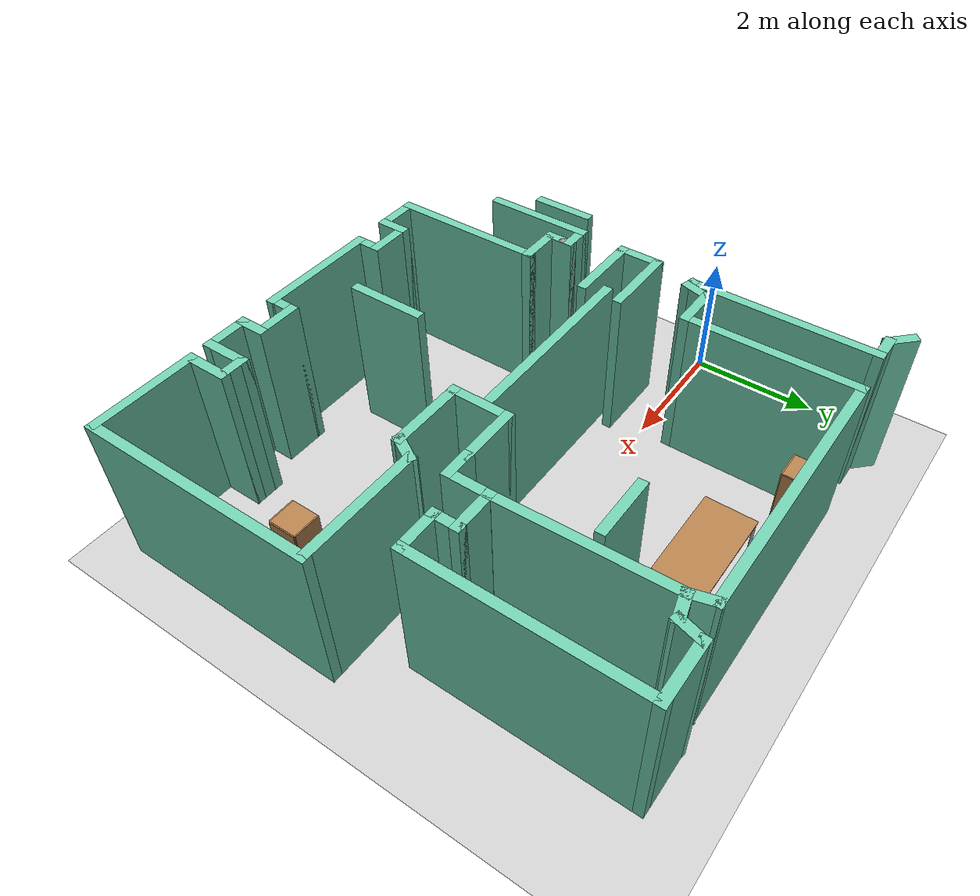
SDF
<sdf version="1.6">
 <world name="default">
  <model name="ground_plane">
   <static>1</static>
   <link name="link">
    <collision name="collision">
     <geometry><plane><normal>0 0 1</normal><size>100 100</size></plane></geometry>
     <surface>
      <contact><collide_bitmask>65535</collide_bitmask></contact>
      <friction><ode><mu>100</mu><mu2>50</mu2></ode></friction>
     </surface>
    </collision>
    <visual name="visual">
     <cast_shadows>0</cast_shadows>
     <geometry><plane><normal>0 0 1</normal><size>100 100</size></plane></geometry>
     <material>
      <script><uri>file://media/materials/scripts/gazebo.material</uri><name>Gazebo/Grey</name></script>
     </material>
    </visual>
   </link>
  </model>
  <model name="map_8">
   <pose>-0.03403 -0.65715 0 0 -0 0</pose>
   <link name="Wall_106">
    <collision name="Wall_106_Collision">
     <geometry><box><size>1 0.15 2.5</size></box></geometry>
     <pose>0 0 1.25 0 -0 0</pose>
    </collision>
    <visual name="Wall_106_Visual">
     <pose>0 0 1.25 0 -0 0</pose>
     <geometry><box><size>1 0.15 2.5</size></box></geometry>
     <material>
      <script><uri>file://media/materials/scripts/gazebo.material</uri><name>Gazebo/Grey</name></script>
      <ambient>0.435294 0.796078 0.67451 1</ambient>
     </material>
     <meta><layer>0</layer></meta>
    </visual>
    <pose>5.57376 2.19147 0 0 -0 0</pose>
   </link>
   <link name="Wall_108">
    <collision name="Wall_108_Collision">
     <geometry><box><size>2.72254 0.15 2.5</size></box></geometry>
     <pose>0 0 1.25 0 -0 0</pose>
    </collision>
    <visual name="Wall_108_Visual">
     <pose>0 0 1.25 0 -0 0</pose>
     <geometry><box><size>2.72254 0.15 2.5</size></box></geometry>
     <material>
      <script><uri>file://media/materials/scripts/gazebo.material</uri><name>Gazebo/Grey</name></script>
      <ambient>0.435294 0.796078 0.67451 1</ambient>
     </material>
     <meta><layer>0</layer></meta>
    </visual>
    <pose>6.26741 2.09623 0 0 -0 -1.54021</pose>
   </link>
   <link name="Wall_115">
    <collision name="Wall_115_Collision">
     <geometry><box><size>3 0.15 2.5</size></box></geometry>
     <pose>0 0 1.25 0 -0 0</pose>
    </collision>
    <visual name="Wall_115_Visual">
     <pose>0 0 1.25 0 -0 0</pose>
     <geometry><box><size>3 0.15 2.5</size></box></geometry>
     <material>
      <script><uri>file://media/materials/scripts/gazebo.material</uri><name>Gazebo/Grey</name></script>
      <ambient>0.435294 0.796078 0.67451 1</ambient>
     </material>
     <meta><layer>0</layer></meta>
    </visual>
    <pose>3.56185 -0.144722 0 0 -0 3.14159</pose>
   </link>
   <link name="Wall_118">
    <collision name="Wall_118_Collision">
     <geometry><box><size>0.75 0.15 2.5</size></box></geometry>
     <pose>0 0 1.25 0 -0 0</pose>
    </collision>
    <visual name="Wall_118_Visual">
     <pose>0 0 1.25 0 -0 0</pose>
     <geometry><box><size>0.75 0.15 2.5</size></box></geometry>
     <material>
      <script><uri>file://media/materials/scripts/gazebo.material</uri><name>Gazebo/Grey</name></script>
      <ambient>0.435294 0.796078 0.67451 1</ambient>
     </material>
     <meta><layer>0</layer></meta>
    </visual>
    <pose>1.12404 -0.167155 0 0 -0 -1.5708</pose>
   </link>
   <link name="Wall_119">
    <collision name="Wall_119_Collision">
     <geometry><box><size>1.25 0.15 2.5</size></box></geometry>
     <pose>0 0 1.25 0 -0 0</pose>
    </collision>
    <visual name="Wall_119_Visual">
     <pose>0 0 1.25 0 -0 0</pose>
     <geometry><box><size>1.25 0.15 2.5</size></box></geometry>
     <material>
      <script><uri>file://media/materials/scripts/gazebo.material</uri><name>Gazebo/Grey</name></script>
      <ambient>0.435294 0.796078 0.67451 1</ambient>
     </material>
     <meta><layer>0</layer></meta>
    </visual>
    <pose>1.67404 -0.467155 0 0 -0 0</pose>
   </link>
   <link name="Wall_121">
    <collision name="Wall_121_Collision">
     <geometry><box><size>1.25 0.15 2.5</size></box></geometry>
     <pose>0 0 1.25 0 -0 0</pose>
    </collision>
    <visual name="Wall_121_Visual">
     <pose>0 0 1.25 0 -0 0</pose>
     <geometry><box><size>1.25 0.15 2.5</size></box></geometry>
     <material>
      <script><uri>file://media/materials/scripts/gazebo.material</uri><name>Gazebo/Grey</name></script>
      <ambient>0.435294 0.796078 0.67451 1</ambient>
     </material>
     <meta><layer>0</layer></meta>
    </visual>
    <pose>1.67404 0.132845 0 0 -0 0</pose>
   </link>
   <link name="Wall_123">
    <collision name="Wall_123_Collision">
     <geometry><box><size>1.25 0.15 2.5</size></box></geometry>
     <pose>0 0 1.25 0 -0 0</pose>
    </collision>
    <visual name="Wall_123_Visual">
     <pose>0 0 1.25 0 -0 0</pose>
     <geometry><box><size>1.25 0.15 2.5</size></box></geometry>
     <material>
      <script><uri>file://media/materials/scripts/gazebo.material</uri><name>Gazebo/Grey</name></script>
      <ambient>0.435294 0.796078 0.67451 1</ambient>
     </material>
     <meta><layer>0</layer></meta>
    </visual>
    <pose>4.15415 -2.59143 0 0 -0 -1.5708</pose>
   </link>
   <link name="Wall_132">
    <collision name="Wall_132_Collision">
     <geometry><box><size>1 0.15 2.5</size></box></geometry>
     <pose>0 0 1.25 0 -0 0</pose>
    </collision>
    <visual name="Wall_132_Visual">
     <pose>0 0 1.25 0 -0 0</pose>
     <geometry><box><size>1 0.15 2.5</size></box></geometry>
     <material>
      <script><uri>file://media/materials/scripts/gazebo.material</uri><name>Gazebo/Grey</name></script>
      <ambient>0.435294 0.796078 0.67451 1</ambient>
     </material>
     <meta><layer>0</layer></meta>
    </visual>
    <pose>0.661426 -1.84191 0 0 -0 -1.5708</pose>
   </link>
   <link name="Wall_31">
    <collision name="Wall_31_Collision">
     <geometry><box><size>1.75 0.15 2.5</size></box></geometry>
     <pose>0 0 1.25 0 -0 0</pose>
    </collision>
    <visual name="Wall_31_Visual">
     <pose>0 0 1.25 0 -0 0</pose>
     <geometry><box><size>1.75 0.15 2.5</size></box></geometry>
     <material>
      <script><uri>file://media/materials/scripts/gazebo.material</uri><name>Gazebo/Grey</name></script>
      <ambient>0.435294 0.796078 0.67451 1</ambient>
     </material>
     <meta><layer>0</layer></meta>
    </visual>
    <pose>1.08174 -2.03633 0 0 -0 1.5708</pose>
   </link>
   <link name="Wall_32">
    <collision name="Wall_32_Collision">
     <geometry><box><size>0.5 0.15 2.5</size></box></geometry>
     <pose>0 0 1.25 0 -0 0</pose>
    </collision>
    <visual name="Wall_32_Visual">
     <pose>0 0 1.25 0 -0 0</pose>
     <geometry><box><size>0.5 0.15 2.5</size></box></geometry>
     <material>
      <script><uri>file://media/materials/scripts/gazebo.material</uri><name>Gazebo/Grey</name></script>
      <ambient>0.435294 0.796078 0.67451 1</ambient>
     </material>
     <meta><layer>0</layer></meta>
    </visual>
    <pose>1.25675 -1.23633 0 0 -0 0</pose>
   </link>
   <link name="Wall_33">
    <collision name="Wall_33_Collision">
     <geometry><box><size>0.25 0.15 2.5</size></box></geometry>
     <pose>0 0 1.25 0 -0 0</pose>
    </collision>
    <visual name="Wall_33_Visual">
     <pose>0 0 1.25 0 -0 0</pose>
     <geometry><box><size>0.25 0.15 2.5</size></box></geometry>
     <material>
      <script><uri>file://media/materials/scripts/gazebo.material</uri><name>Gazebo/Grey</name></script>
      <ambient>1 1 1 1</ambient>
     </material>
     <meta><layer>0</layer></meta>
    </visual>
    <pose>1.43175 -1.28633 0 0 -0 -1.5708</pose>
   </link>
   <link name="Wall_36">
    <collision name="Wall_36_Collision">
     <geometry><box><size>0.5 0.15 2.5</size></box></geometry>
     <pose>0 0 1.25 0 -0 0</pose>
    </collision>
    <visual name="Wall_36_Visual">
     <pose>0 0 1.25 0 -0 0</pose>
     <geometry><box><size>0.5 0.15 2.5</size></box></geometry>
     <material>
      <script><uri>file://media/materials/scripts/gazebo.material</uri><name>Gazebo/Grey</name></script>
      <ambient>0.435294 0.796078 0.67451 1</ambient>
     </material>
     <meta><layer>0</layer></meta>
    </visual>
    <pose>1.43175 -1.41133 0 0 -0 -1.5708</pose>
   </link>
   <link name="Wall_39">
    <collision name="Wall_39_Collision">
     <geometry><box><size>0.75 0.15 2.5</size></box></geometry>
     <pose>0 0 1.25 0 -0 0</pose>
    </collision>
    <visual name="Wall_39_Visual">
     <pose>0 0 1.25 0 -0 0</pose>
     <geometry><box><size>0.75 0.15 2.5</size></box></geometry>
     <material>
      <script><uri>file://media/materials/scripts/gazebo.material</uri><name>Gazebo/Grey</name></script>
      <ambient>0.435294 0.796078 0.67451 1</ambient>
     </material>
     <meta><layer>0</layer></meta>
    </visual>
    <pose>1.73175 -1.58633 0 0 -0 0</pose>
   </link>
   <link name="Wall_40">
    <collision name="Wall_40_Collision">
     <geometry><box><size>2.5 0.15 2.5</size></box></geometry>
     <pose>0 0 1.25 0 -0 0</pose>
    </collision>
    <visual name="Wall_40_Visual">
     <pose>0 0 1.25 0 -0 0</pose>
     <geometry><box><size>2.5 0.15 2.5</size></box></geometry>
     <material>
      <script><uri>file://media/materials/scripts/gazebo.material</uri><name>Gazebo/Grey</name></script>
      <ambient>0.435294 0.796078 0.67451 1</ambient>
     </material>
     <meta><layer>0</layer></meta>
    </visual>
    <pose>2.03174 -2.76133 0 0 -0 -1.5708</pose>
   </link>
   <link name="Wall_41">
    <collision name="Wall_41_Collision">
     <geometry><box><size>0.75 0.15 2.5</size></box></geometry>
     <pose>0 0 1.25 0 -0 0</pose>
    </collision>
    <visual name="Wall_41_Visual">
     <pose>0 0 1.25 0 -0 0</pose>
     <geometry><box><size>0.75 0.15 2.5</size></box></geometry>
     <material>
      <script><uri>file://media/materials/scripts/gazebo.material</uri><name>Gazebo/Grey</name></script>
      <ambient>0.435294 0.796078 0.67451 1</ambient>
     </material>
     <meta><layer>0</layer></meta>
    </visual>
    <pose>2.33175 -3.93633 0 0 -0 0</pose>
   </link>
   <link name="Wall_42">
    <collision name="Wall_42_Collision">
     <geometry><box><size>0.5 0.15 2.5</size></box></geometry>
     <pose>0 0 1.25 0 -0 0</pose>
    </collision>
    <visual name="Wall_42_Visual">
     <pose>0 0 1.25 0 -0 0</pose>
     <geometry><box><size>0.5 0.15 2.5</size></box></geometry>
     <material>
      <script><uri>file://media/materials/scripts/gazebo.material</uri><name>Gazebo/Grey</name></script>
      <ambient>0.435294 0.796078 0.67451 1</ambient>
     </material>
     <meta><layer>0</layer></meta>
    </visual>
    <pose>2.63175 -3.76133 0 0 -0 1.5708</pose>
   </link>
   <link name="Wall_43">
    <collision name="Wall_43_Collision">
     <geometry><box><size>0.75 0.15 2.5</size></box></geometry>
     <pose>0 0 1.25 0 -0 0</pose>
    </collision>
    <visual name="Wall_43_Visual">
     <pose>0 0 1.25 0 -0 0</pose>
     <geometry><box><size>0.75 0.15 2.5</size></box></geometry>
     <material>
      <script><uri>file://media/materials/scripts/gazebo.material</uri><name>Gazebo/Grey</name></script>
      <ambient>0.435294 0.796078 0.67451 1</ambient>
     </material>
     <meta><layer>0</layer></meta>
    </visual>
    <pose>2.93174 -3.58633 0 0 -0 0</pose>
   </link>
   <link name="Wall_44">
    <collision name="Wall_44_Collision">
     <geometry><box><size>0.5 0.15 2.5</size></box></geometry>
     <pose>0 0 1.25 0 -0 0</pose>
    </collision>
    <visual name="Wall_44_Visual">
     <pose>0 0 1.25 0 -0 0</pose>
     <geometry><box><size>0.5 0.15 2.5</size></box></geometry>
     <material>
      <script><uri>file://media/materials/scripts/gazebo.material</uri><name>Gazebo/Grey</name></script>
      <ambient>0.435294 0.796078 0.67451 1</ambient>
     </material>
     <meta><layer>0</layer></meta>
    </visual>
    <pose>3.23175 -3.76133 0 0 -0 -1.5708</pose>
   </link>
   <link name="Wall_45">
    <collision name="Wall_45_Collision">
     <geometry><box><size>2 0.15 2.5</size></box></geometry>
     <pose>0 0 1.25 0 -0 0</pose>
    </collision>
    <visual name="Wall_45_Visual">
     <pose>0 0 1.25 0 -0 0</pose>
     <geometry><box><size>2 0.15 2.5</size></box></geometry>
     <material>
      <script><uri>file://media/materials/scripts/gazebo.material</uri><name>Gazebo/Grey</name></script>
      <ambient>0.435294 0.796078 0.67451 1</ambient>
     </material>
     <meta><layer>0</layer></meta>
    </visual>
    <pose>4.15674 -3.93633 0 0 -0 0</pose>
   </link>
   <link name="Wall_46">
    <collision name="Wall_46_Collision">
     <geometry><box><size>0.5 0.15 2.5</size></box></geometry>
     <pose>0 0 1.25 0 -0 0</pose>
    </collision>
    <visual name="Wall_46_Visual">
     <pose>0 0 1.25 0 -0 0</pose>
     <geometry><box><size>0.5 0.15 2.5</size></box></geometry>
     <material>
      <script><uri>file://media/materials/scripts/gazebo.material</uri><name>Gazebo/Grey</name></script>
      <ambient>0.435294 0.796078 0.67451 1</ambient>
     </material>
     <meta><layer>0</layer></meta>
    </visual>
    <pose>5.08174 -3.76133 0 0 -0 1.5708</pose>
   </link>
   <link name="Wall_49">
    <collision name="Wall_49_Collision">
     <geometry><box><size>0.75 0.15 2.5</size></box></geometry>
     <pose>0 0 1.25 0 -0 0</pose>
    </collision>
    <visual name="Wall_49_Visual">
     <pose>0 0 1.25 0 -0 0</pose>
     <geometry><box><size>0.75 0.15 2.5</size></box></geometry>
     <material>
      <script><uri>file://media/materials/scripts/gazebo.material</uri><name>Gazebo/Grey</name></script>
      <ambient>0.435294 0.796078 0.67451 1</ambient>
     </material>
     <meta><layer>0</layer></meta>
    </visual>
    <pose>5.38174 -3.58633 0 0 -0 0</pose>
   </link>
   <link name="Wall_50">
    <collision name="Wall_50_Collision">
     <geometry><box><size>0.5 0.15 2.5</size></box></geometry>
     <pose>0 0 1.25 0 -0 0</pose>
    </collision>
    <visual name="Wall_50_Visual">
     <pose>0 0 1.25 0 -0 0</pose>
     <geometry><box><size>0.5 0.15 2.5</size></box></geometry>
     <material>
      <script><uri>file://media/materials/scripts/gazebo.material</uri><name>Gazebo/Grey</name></script>
      <ambient>0.435294 0.796078 0.67451 1</ambient>
     </material>
     <meta><layer>0</layer></meta>
    </visual>
    <pose>5.68175 -3.76133 0 0 -0 -1.5708</pose>
   </link>
   <link name="Wall_51">
    <collision name="Wall_51_Collision">
     <geometry><box><size>0.75 0.15 2.5</size></box></geometry>
     <pose>0 0 1.25 0 -0 0</pose>
    </collision>
    <visual name="Wall_51_Visual">
     <pose>0 0 1.25 0 -0 0</pose>
     <geometry><box><size>0.75 0.15 2.5</size></box></geometry>
     <material>
      <script><uri>file://media/materials/scripts/gazebo.material</uri><name>Gazebo/Grey</name></script>
      <ambient>0.435294 0.796078 0.67451 1</ambient>
     </material>
     <meta><layer>0</layer></meta>
    </visual>
    <pose>5.98175 -3.93633 0 0 -0 0</pose>
   </link>
   <link name="Wall_52">
    <collision name="Wall_52_Collision">
     <geometry><box><size>0.75 0.15 2.5</size></box></geometry>
     <pose>0 0 1.25 0 -0 0</pose>
    </collision>
    <visual name="Wall_52_Visual">
     <pose>0 0 1.25 0 -0 0</pose>
     <geometry><box><size>0.75 0.15 2.5</size></box></geometry>
     <material>
      <script><uri>file://media/materials/scripts/gazebo.material</uri><name>Gazebo/Grey</name></script>
      <ambient>0.435294 0.796078 0.67451 1</ambient>
     </material>
     <meta><layer>0</layer></meta>
    </visual>
    <pose>6.28174 -3.63633 0 0 -0 1.5708</pose>
   </link>
   <link name="Wall_53">
    <collision name="Wall_53_Collision">
     <geometry><box><size>0.5 0.15 2.5</size></box></geometry>
     <pose>0 0 1.25 0 -0 0</pose>
    </collision>
    <visual name="Wall_53_Visual">
     <pose>0 0 1.25 0 -0 0</pose>
     <geometry><box><size>0.5 0.15 2.5</size></box></geometry>
     <material>
      <script><uri>file://media/materials/scripts/gazebo.material</uri><name>Gazebo/Grey</name></script>
      <ambient>0.435294 0.796078 0.67451 1</ambient>
     </material>
     <meta><layer>0</layer></meta>
    </visual>
    <pose>6.45674 -3.33633 0 0 -0 0</pose>
   </link>
   <link name="Wall_54">
    <collision name="Wall_54_Collision">
     <geometry><box><size>0.75 0.15 2.5</size></box></geometry>
     <pose>0 0 1.25 0 -0 0</pose>
    </collision>
    <visual name="Wall_54_Visual">
     <pose>0 0 1.25 0 -0 0</pose>
     <geometry><box><size>0.75 0.15 2.5</size></box></geometry>
     <material>
      <script><uri>file://media/materials/scripts/gazebo.material</uri><name>Gazebo/Grey</name></script>
      <ambient>0.435294 0.796078 0.67451 1</ambient>
     </material>
     <meta><layer>0</layer></meta>
    </visual>
    <pose>6.63174 -3.63633 0 0 -0 -1.5708</pose>
   </link>
   <link name="Wall_55">
    <collision name="Wall_55_Collision">
     <geometry><box><size>1.75 0.15 2.5</size></box></geometry>
     <pose>0 0 1.25 0 -0 0</pose>
    </collision>
    <visual name="Wall_55_Visual">
     <pose>0 0 1.25 0 -0 0</pose>
     <geometry><box><size>1.75 0.15 2.5</size></box></geometry>
     <material>
      <script><uri>file://media/materials/scripts/gazebo.material</uri><name>Gazebo/Grey</name></script>
      <ambient>0.435294 0.796078 0.67451 1</ambient>
     </material>
     <meta><layer>0</layer></meta>
    </visual>
    <pose>7.43174 -3.93633 0 0 -0 0</pose>
   </link>
   <link name="Wall_56">
    <collision name="Wall_56_Collision">
     <geometry><box><size>3.75 0.15 2.5</size></box></geometry>
     <pose>0 0 1.25 0 -0 0</pose>
    </collision>
    <visual name="Wall_56_Visual">
     <pose>0 0 1.25 0 -0 0</pose>
     <geometry><box><size>3.75 0.15 2.5</size></box></geometry>
     <material>
      <script><uri>file://media/materials/scripts/gazebo.material</uri><name>Gazebo/Grey</name></script>
      <ambient>0.435294 0.796078 0.67451 1</ambient>
     </material>
     <meta><layer>0</layer></meta>
    </visual>
    <pose>8.23175 -2.13633 0 0 -0 1.5708</pose>
   </link>
   <link name="Wall_57">
    <collision name="Wall_57_Collision">
     <geometry><box><size>2 0.15 2.5</size></box></geometry>
     <pose>0 0 1.25 0 -0 0</pose>
    </collision>
    <visual name="Wall_57_Visual">
     <pose>0 0 1.25 0 -0 0</pose>
     <geometry><box><size>2 0.15 2.5</size></box></geometry>
     <material>
      <script><uri>file://media/materials/scripts/gazebo.material</uri><name>Gazebo/Grey</name></script>
      <ambient>0.435294 0.796078 0.67451 1</ambient>
     </material>
     <meta><layer>0</layer></meta>
    </visual>
    <pose>7.30674 -0.336333 0 0 -0 3.14159</pose>
   </link>
   <link name="Wall_60">
    <collision name="Wall_60_Collision">
     <geometry><box><size>0.5 0.15 2.5</size></box></geometry>
     <pose>0 0 1.25 0 -0 0</pose>
    </collision>
    <visual name="Wall_60_Visual">
     <pose>0 0 1.25 0 -0 0</pose>
     <geometry><box><size>0.5 0.15 2.5</size></box></geometry>
     <material>
      <script><uri>file://media/materials/scripts/gazebo.material</uri><name>Gazebo/Grey</name></script>
      <ambient>0.435294 0.796078 0.67451 1</ambient>
     </material>
     <meta><layer>0</layer></meta>
    </visual>
    <pose>6.29425 -0.487887 0 0 -0 -2.0944</pose>
   </link>
   <link name="Wall_61">
    <collision name="Wall_61_Collision">
     <geometry><box><size>1.25 0.15 2.5</size></box></geometry>
     <pose>0 0 1.25 0 -0 0</pose>
    </collision>
    <visual name="Wall_61_Visual">
     <pose>0 0 1.25 0 -0 0</pose>
     <geometry><box><size>1.25 0.15 2.5</size></box></geometry>
     <material>
      <script><uri>file://media/materials/scripts/gazebo.material</uri><name>Gazebo/Grey</name></script>
      <ambient>0.435294 0.796078 0.67451 1</ambient>
     </material>
     <meta><layer>0</layer></meta>
    </visual>
    <pose>5.65674 -0.639442 0 0 -0 3.14159</pose>
   </link>
   <link name="Wall_62">
    <collision name="Wall_62_Collision">
     <geometry><box><size>1 0.15 2.5</size></box></geometry>
     <pose>0 0 1.25 0 -0 0</pose>
    </collision>
    <visual name="Wall_62_Visual">
     <pose>0 0 1.25 0 -0 0</pose>
     <geometry><box><size>1 0.15 2.5</size></box></geometry>
     <material>
      <script><uri>file://media/materials/scripts/gazebo.material</uri><name>Gazebo/Grey</name></script>
      <ambient>0.435294 0.796078 0.67451 1</ambient>
     </material>
     <meta><layer>0</layer></meta>
    </visual>
    <pose>5.10675 -0.214442 0 0 -0 1.5708</pose>
   </link>
   <link name="Wall_63">
    <collision name="Wall_63_Collision">
     <geometry><box><size>1 0.15 2.5</size></box></geometry>
     <pose>0 0 1.25 0 -0 0</pose>
    </collision>
    <visual name="Wall_63_Visual">
     <pose>0 0 1.25 0 -0 0</pose>
     <geometry><box><size>1 0.15 2.5</size></box></geometry>
     <material>
      <script><uri>file://media/materials/scripts/gazebo.material</uri><name>Gazebo/Grey</name></script>
      <ambient>0.435294 0.796078 0.67451 1</ambient>
     </material>
     <meta><layer>0</layer></meta>
    </visual>
    <pose>5.53174 0.210558 0 0 -0 0</pose>
   </link>
   <link name="Wall_64">
    <collision name="Wall_64_Collision">
     <geometry><box><size>0.5 0.15 2.5</size></box></geometry>
     <pose>0 0 1.25 0 -0 0</pose>
    </collision>
    <visual name="Wall_64_Visual">
     <pose>0 0 1.25 0 -0 0</pose>
     <geometry><box><size>0.5 0.15 2.5</size></box></geometry>
     <material>
      <script><uri>file://media/materials/scripts/gazebo.material</uri><name>Gazebo/Grey</name></script>
      <ambient>0.435294 0.796078 0.67451 1</ambient>
     </material>
     <meta><layer>0</layer></meta>
    </visual>
    <pose>6.13174 0.210558 0 0 -0 0</pose>
   </link>
   <link name="Wall_65">
    <collision name="Wall_65_Collision">
     <geometry><box><size>0.75 0.15 2.5</size></box></geometry>
     <pose>0 0 1.25 0 -0 0</pose>
    </collision>
    <visual name="Wall_65_Visual">
     <pose>0 0 1.25 0 -0 0</pose>
     <geometry><box><size>0.75 0.15 2.5</size></box></geometry>
     <material>
      <script><uri>file://media/materials/scripts/gazebo.material</uri><name>Gazebo/Grey</name></script>
      <ambient>0.435294 0.796078 0.67451 1</ambient>
     </material>
     <meta><layer>0</layer></meta>
    </visual>
    <pose>6.30675 0.510558 0 0 -0 1.5708</pose>
   </link>
   <link name="Wall_66">
    <collision name="Wall_66_Collision">
     <geometry><box><size>0.75 0.15 2.5</size></box></geometry>
     <pose>0 0 1.25 0 -0 0</pose>
    </collision>
    <visual name="Wall_66_Visual">
     <pose>0 0 1.25 0 -0 0</pose>
     <geometry><box><size>0.75 0.15 2.5</size></box></geometry>
     <material>
      <script><uri>file://media/materials/scripts/gazebo.material</uri><name>Gazebo/Grey</name></script>
      <ambient>0.435294 0.796078 0.67451 1</ambient>
     </material>
     <meta><layer>0</layer></meta>
    </visual>
    <pose>6.60675 0.810558 0 0 -0 0</pose>
   </link>
   <link name="Wall_67">
    <collision name="Wall_67_Collision">
     <geometry><box><size>0.5 0.15 2.5</size></box></geometry>
     <pose>0 0 1.25 0 -0 0</pose>
    </collision>
    <visual name="Wall_67_Visual">
     <pose>0 0 1.25 0 -0 0</pose>
     <geometry><box><size>0.5 0.15 2.5</size></box></geometry>
     <material>
      <script><uri>file://media/materials/scripts/gazebo.material</uri><name>Gazebo/Grey</name></script>
      <ambient>0.435294 0.796078 0.67451 1</ambient>
     </material>
     <meta><layer>0</layer></meta>
    </visual>
    <pose>6.90674 0.635558 0 0 -0 -1.5708</pose>
   </link>
   <link name="Wall_68">
    <collision name="Wall_68_Collision">
     <geometry><box><size>0.75 0.15 2.5</size></box></geometry>
     <pose>0 0 1.25 0 -0 0</pose>
    </collision>
    <visual name="Wall_68_Visual">
     <pose>0 0 1.25 0 -0 0</pose>
     <geometry><box><size>0.75 0.15 2.5</size></box></geometry>
     <material>
      <script><uri>file://media/materials/scripts/gazebo.material</uri><name>Gazebo/Grey</name></script>
      <ambient>0.435294 0.796078 0.67451 1</ambient>
     </material>
     <meta><layer>0</layer></meta>
    </visual>
    <pose>7.20674 0.460558 0 0 -0 0</pose>
   </link>
   <link name="Wall_69">
    <collision name="Wall_69_Collision">
     <geometry><box><size>3.5 0.15 2.5</size></box></geometry>
     <pose>0 0 1.25 0 -0 0</pose>
    </collision>
    <visual name="Wall_69_Visual">
     <pose>0 0 1.25 0 -0 0</pose>
     <geometry><box><size>3.5 0.15 2.5</size></box></geometry>
     <material>
      <script><uri>file://media/materials/scripts/gazebo.material</uri><name>Gazebo/Grey</name></script>
      <ambient>0.435294 0.796078 0.67451 1</ambient>
     </material>
     <meta><layer>0</layer></meta>
    </visual>
    <pose>7.50674 2.13556 0 0 -0 1.5708</pose>
   </link>
   <link name="Wall_70">
    <collision name="Wall_70_Collision">
     <geometry><box><size>1 0.15 2.5</size></box></geometry>
     <pose>0 0 1.25 0 -0 0</pose>
    </collision>
    <visual name="Wall_70_Visual">
     <pose>0 0 1.25 0 -0 0</pose>
     <geometry><box><size>1 0.15 2.5</size></box></geometry>
     <material>
      <script><uri>file://media/materials/scripts/gazebo.material</uri><name>Gazebo/Grey</name></script>
      <ambient>0.435294 0.796078 0.67451 1</ambient>
     </material>
     <meta><layer>0</layer></meta>
    </visual>
    <pose>7.08174 3.81056 0 0 -0 3.14159</pose>
   </link>
   <link name="Wall_71">
    <collision name="Wall_71_Collision">
     <geometry><box><size>0.5 0.15 2.5</size></box></geometry>
     <pose>0 0 1.25 0 -0 0</pose>
    </collision>
    <visual name="Wall_71_Visual">
     <pose>0 0 1.25 0 -0 0</pose>
     <geometry><box><size>0.5 0.15 2.5</size></box></geometry>
     <material>
      <script><uri>file://media/materials/scripts/gazebo.material</uri><name>Gazebo/Grey</name></script>
      <ambient>0.435294 0.796078 0.67451 1</ambient>
     </material>
     <meta><layer>0</layer></meta>
    </visual>
    <pose>6.61145 3.64152 0 0 -0 -1.8326</pose>
   </link>
   <link name="Wall_72">
    <collision name="Wall_72_Collision">
     <geometry><box><size>0.5 0.15 2.5</size></box></geometry>
     <pose>0 0 1.25 0 -0 0</pose>
    </collision>
    <visual name="Wall_72_Visual">
     <pose>0 0 1.25 0 -0 0</pose>
     <geometry><box><size>0.5 0.15 2.5</size></box></geometry>
     <material>
      <script><uri>file://media/materials/scripts/gazebo.material</uri><name>Gazebo/Grey</name></script>
      <ambient>0.435294 0.796078 0.67451 1</ambient>
     </material>
     <meta><layer>0</layer></meta>
    </visual>
    <pose>6.39712 3.42719 0 0 -0 -2.87979</pose>
   </link>
   <link name="Wall_73">
    <collision name="Wall_73_Collision">
     <geometry><box><size>0.5 0.15 2.5</size></box></geometry>
     <pose>0 0 1.25 0 -0 0</pose>
    </collision>
    <visual name="Wall_73_Visual">
     <pose>0 0 1.25 0 -0 0</pose>
     <geometry><box><size>0.5 0.15 2.5</size></box></geometry>
     <material>
      <script><uri>file://media/materials/scripts/gazebo.material</uri><name>Gazebo/Grey</name></script>
      <ambient>0.435294 0.796078 0.67451 1</ambient>
     </material>
     <meta><layer>0</layer></meta>
    </visual>
    <pose>6.18279 3.55093 0 0 -0 1.8326</pose>
   </link>
   <link name="Wall_74">
    <collision name="Wall_74_Collision">
     <geometry><box><size>4.25 0.15 2.5</size></box></geometry>
     <pose>0 0 1.25 0 -0 0</pose>
    </collision>
    <visual name="Wall_74_Visual">
     <pose>0 0 1.25 0 -0 0</pose>
     <geometry><box><size>4.25 0.15 2.5</size></box></geometry>
     <material>
      <script><uri>file://media/materials/scripts/gazebo.material</uri><name>Gazebo/Grey</name></script>
      <ambient>0.435294 0.796078 0.67451 1</ambient>
     </material>
     <meta><layer>0</layer></meta>
    </visual>
    <pose>4.0875 3.71997 0 0 -0 3.14159</pose>
   </link>
   <link name="Wall_75">
    <collision name="Wall_75_Collision">
     <geometry><box><size>2.75 0.15 2.5</size></box></geometry>
     <pose>0 0 1.25 0 -0 0</pose>
    </collision>
    <visual name="Wall_75_Visual">
     <pose>0 0 1.25 0 -0 0</pose>
     <geometry><box><size>2.75 0.15 2.5</size></box></geometry>
     <material>
      <script><uri>file://media/materials/scripts/gazebo.material</uri><name>Gazebo/Grey</name></script>
      <ambient>0.435294 0.796078 0.67451 1</ambient>
     </material>
     <meta><layer>0</layer></meta>
    </visual>
    <pose>2.0375 2.41997 0 0 -0 -1.5708</pose>
   </link>
   <link name="Wall_76">
    <collision name="Wall_76_Collision">
     <geometry><box><size>0.75 0.15 2.5</size></box></geometry>
     <pose>0 0 1.25 0 -0 0</pose>
    </collision>
    <visual name="Wall_76_Visual">
     <pose>0 0 1.25 0 -0 0</pose>
     <geometry><box><size>0.75 0.15 2.5</size></box></geometry>
     <material>
      <script><uri>file://media/materials/scripts/gazebo.material</uri><name>Gazebo/Grey</name></script>
      <ambient>0.435294 0.796078 0.67451 1</ambient>
     </material>
     <meta><layer>0</layer></meta>
    </visual>
    <pose>1.7375 1.11997 0 0 -0 3.14159</pose>
   </link>
   <link name="Wall_77">
    <collision name="Wall_77_Collision">
     <geometry><box><size>0.5 0.15 2.5</size></box></geometry>
     <pose>0 0 1.25 0 -0 0</pose>
    </collision>
    <visual name="Wall_77_Visual">
     <pose>0 0 1.25 0 -0 0</pose>
     <geometry><box><size>0.5 0.15 2.5</size></box></geometry>
     <material>
      <script><uri>file://media/materials/scripts/gazebo.material</uri><name>Gazebo/Grey</name></script>
      <ambient>0.435294 0.796078 0.67451 1</ambient>
     </material>
     <meta><layer>0</layer></meta>
    </visual>
    <pose>1.3922 0.950935 0 0 -0 -1.8326</pose>
   </link>
   <link name="Wall_78">
    <collision name="Wall_78_Collision">
     <geometry><box><size>0.25 0.15 2.5</size></box></geometry>
     <pose>0 0 1.25 0 -0 0</pose>
    </collision>
    <visual name="Wall_78_Visual">
     <pose>0 0 1.25 0 -0 0</pose>
     <geometry><box><size>0.25 0.15 2.5</size></box></geometry>
     <material>
      <script><uri>file://media/materials/scripts/gazebo.material</uri><name>Gazebo/Grey</name></script>
      <ambient>0.435294 0.796078 0.67451 1</ambient>
     </material>
     <meta><layer>0</layer></meta>
    </visual>
    <pose>1.29862 0.794839 0 0 -0 2.87979</pose>
   </link>
   <link name="Wall_79">
    <collision name="Wall_79_Collision">
     <geometry><box><size>3 0.15 2.5</size></box></geometry>
     <pose>0 0 1.25 0 -0 0</pose>
    </collision>
    <visual name="Wall_79_Visual">
     <pose>0 0 1.25 0 -0 0</pose>
     <geometry><box><size>3 0.15 2.5</size></box></geometry>
     <material>
      <script><uri>file://media/materials/scripts/gazebo.material</uri><name>Gazebo/Grey</name></script>
      <ambient>0.435294 0.796078 0.67451 1</ambient>
     </material>
     <meta><layer>0</layer></meta>
    </visual>
    <pose>1.25032 2.23278 0 0 -0 1.5708</pose>
   </link>
   <link name="Wall_80">
    <collision name="Wall_80_Collision">
     <geometry><box><size>0.5 0.15 2.5</size></box></geometry>
     <pose>0 0 1.25 0 -0 0</pose>
    </collision>
    <visual name="Wall_80_Visual">
     <pose>0 0 1.25 0 -0 0</pose>
     <geometry><box><size>0.5 0.15 2.5</size></box></geometry>
     <material>
      <script><uri>file://media/materials/scripts/gazebo.material</uri><name>Gazebo/Grey</name></script>
      <ambient>0.435294 0.796078 0.67451 1</ambient>
     </material>
     <meta><layer>0</layer></meta>
    </visual>
    <pose>1.07532 3.65778 0 0 -0 3.14159</pose>
   </link>
   <link name="Wall_81">
    <collision name="Wall_81_Collision">
     <geometry><box><size>0.5 0.15 2.5</size></box></geometry>
     <pose>0 0 1.25 0 -0 0</pose>
    </collision>
    <visual name="Wall_81_Visual">
     <pose>0 0 1.25 0 -0 0</pose>
     <geometry><box><size>0.5 0.15 2.5</size></box></geometry>
     <material>
      <script><uri>file://media/materials/scripts/gazebo.material</uri><name>Gazebo/Grey</name></script>
      <ambient>0.435294 0.796078 0.67451 1</ambient>
     </material>
     <meta><layer>0</layer></meta>
    </visual>
    <pose>0.776574 3.78152 0 0 -0 2.35619</pose>
   </link>
   <static>1</static>
  </model>
  <model name="table">
   <static>1</static>
   <link name="link">
    <collision name="surface">
     <pose>0 0 1 0 -0 0</pose>
     <geometry><box><size>1.5 0.8 0.03</size></box></geometry>
     <surface><friction><ode><mu>0.6</mu><mu2>0.6</mu2></ode></friction></surface>
    </collision>
    <visual name="visual1">
     <pose>0 0 1 0 -0 0</pose>
     <geometry><box><size>1.5 0.8 0.03</size></box></geometry>
     <material>
      <script><uri>file://media/materials/scripts/gazebo.material</uri><name>Gazebo/Wood</name></script>
     </material>
    </visual>
    <collision name="front_left_leg">
     <pose>0.68 0.38 0.5 0 -0 0</pose>
     <geometry><cylinder><radius>0.02</radius><length>1</length></cylinder></geometry>
    </collision>
    <visual name="front_left_leg">
     <pose>0.68 0.38 0.5 0 -0 0</pose>
     <geometry><cylinder><radius>0.02</radius><length>1</length></cylinder></geometry>
     <material>
      <script><uri>file://media/materials/scripts/gazebo.material</uri><name>Gazebo/Grey</name></script>
     </material>
    </visual>
    <collision name="front_right_leg">
     <pose>0.68 -0.38 0.5 0 -0 0</pose>
     <geometry><cylinder><radius>0.02</radius><length>1</length></cylinder></geometry>
    </collision>
    <visual name="front_right_leg">
     <pose>0.68 -0.38 0.5 0 -0 0</pose>
     <geometry><cylinder><radius>0.02</radius><length>1</length></cylinder></geometry>
     <material>
      <script><uri>file://media/materials/scripts/gazebo.material</uri><name>Gazebo/Grey</name></script>
     </material>
    </visual>
    <collision name="back_right_leg">
     <pose>-0.68 -0.38 0.5 0 -0 0</pose>
     <geometry><cylinder><radius>0.02</radius><length>1</length></cylinder></geometry>
    </collision>
    <visual name="back_right_leg">
     <pose>-0.68 -0.38 0.5 0 -0 0</pose>
     <geometry><cylinder><radius>0.02</radius><length>1</length></cylinder></geometry>
     <material>
      <script><uri>file://media/materials/scripts/gazebo.material</uri><name>Gazebo/Grey</name></script>
     </material>
    </visual>
    <collision name="back_left_leg">
     <pose>-0.68 0.38 0.5 0 -0 0</pose>
     <geometry><cylinder><radius>0.02</radius><length>1</length></cylinder></geometry>
    </collision>
    <visual name="back_left_leg">
     <pose>-0.68 0.38 0.5 0 -0 0</pose>
     <geometry><cylinder><radius>0.02</radius><length>1</length></cylinder></geometry>
     <material>
      <script><uri>file://media/materials/scripts/gazebo.material</uri><name>Gazebo/Grey</name></script>
     </material>
    </visual>
   </link>
   <pose>4.32068 2.20446 0 0 -0 0</pose>
  </model>
  <model name="cabinet">
   <static>1</static>
   <link name="cabinet_bottom_plate">
    <inertial>
     <pose>0 0 -1 0 -0 0</pose>
     <inertia><ixx>2.05</ixx><ixy>0</ixy><ixz>0</ixz><iyy>2.05</iyy><iyz>0</iyz><izz>2.05</izz></inertia>
     <mass>25</mass>
    </inertial>
    <collision name="cabinet_bottom_plate_geom">
     <pose>0 0 0.01 0 -0 0</pose>
     <geometry><box><size>0.45 0.45 0.02</size></box></geometry>
    </collision>
    <visual name="cabinet_bottom_plate_geom_visual">
     <pose>0 0 0.01 0 -0 0</pose>
     <geometry><box><size>0.45 0.45 0.02</size></box></geometry>
     <material>
      <script><uri>file://media/materials/scripts/gazebo.material</uri><name>Gazebo/Wood</name></script>
     </material>
    </visual>
    <collision name="cabinet_bottom_plate_geom_cabinet_back_plate">
     <pose>0.235 0 0.51 0 -0 0</pose>
     <geometry><box><size>0.02 0.45 1.02</size></box></geometry>
    </collision>
    <visual name="cabinet_bottom_plate_geom_cabinet_back_plate_visual">
     <pose>0.235 0 0.51 0 -0 0</pose>
     <geometry><box><size>0.02 0.45 1.02</size></box></geometry>
     <material>
      <script><uri>file://media/materials/scripts/gazebo.material</uri><name>Gazebo/Wood</name></script>
     </material>
    </visual>
    <collision name="cabinet_bottom_plate_geom_cabinet_left_plate">
     <pose>0 0.235 0.51 0 -0 0</pose>
     <geometry><box><size>0.45 0.02 1.02</size></box></geometry>
    </collision>
    <visual name="cabinet_bottom_plate_geom_cabinet_left_plate_visual">
     <pose>0 0.235 0.51 0 -0 0</pose>
     <geometry><box><size>0.45 0.02 1.02</size></box></geometry>
     <material>
      <script><uri>file://media/materials/scripts/gazebo.material</uri><name>Gazebo/Wood</name></script>
     </material>
    </visual>
    <collision name="cabinet_bottom_plate_geom_cabinet_middle_plate">
     <pose>0 0 0.51 0 -0 0</pose>
     <geometry><box><size>0.45 0.45 0.02</size></box></geometry>
    </collision>
    <visual name="cabinet_bottom_plate_geom_cabinet_middle_plate_visual">
     <pose>0 0 0.51 0 -0 0</pose>
     <geometry><box><size>0.45 0.45 0.02</size></box></geometry>
     <material>
      <script><uri>file://media/materials/scripts/gazebo.material</uri><name>Gazebo/Wood</name></script>
     </material>
    </visual>
    <collision name="cabinet_bottom_plate_geom_cabinet_right_plate">
     <pose>0 -0.235 0.51 0 -0 0</pose>
     <geometry><box><size>0.45 0.02 1.02</size></box></geometry>
    </collision>
    <visual name="cabinet_bottom_plate_geom_cabinet_right_plate_visual">
     <pose>0 -0.235 0.51 0 -0 0</pose>
     <geometry><box><size>0.45 0.02 1.02</size></box></geometry>
     <material>
      <script><uri>file://media/materials/scripts/gazebo.material</uri><name>Gazebo/Wood</name></script>
     </material>
    </visual>
    <collision name="cabinet_bottom_plate_geom_cabinet_top_plate">
     <pose>0 0 1.01 0 -0 0</pose>
     <geometry><box><size>0.45 0.45 0.02</size></box></geometry>
    </collision>
    <visual name="cabinet_bottom_plate_geom_cabinet_top_plate_visual">
     <pose>0 0 1.01 0 -0 0</pose>
     <geometry><box><size>0.45 0.45 0.02</size></box></geometry>
     <material>
      <script><uri>file://media/materials/scripts/gazebo.material</uri><name>Gazebo/Wood</name></script>
     </material>
    </visual>
   </link>
   <pose>2.35931 2.7244 0 0 -0 0</pose>
  </model>
  <model name="cabinet_0">
   <static>1</static>
   <link name="cabinet_bottom_plate">
    <inertial>
     <pose>0 0 -1 0 -0 0</pose>
     <inertia><ixx>2.05</ixx><ixy>0</ixy><ixz>0</ixz><iyy>2.05</iyy><iyz>0</iyz><izz>2.05</izz></inertia>
     <mass>25</mass>
    </inertial>
    <collision name="cabinet_bottom_plate_geom">
     <pose>0 0 0.01 0 -0 0</pose>
     <geometry><box><size>0.45 0.45 0.02</size></box></geometry>
    </collision>
    <visual name="cabinet_bottom_plate_geom_visual">
     <pose>0 0 0.01 0 -0 0</pose>
     <geometry><box><size>0.45 0.45 0.02</size></box></geometry>
     <material>
      <script><uri>file://media/materials/scripts/gazebo.material</uri><name>Gazebo/Wood</name></script>
     </material>
    </visual>
    <collision name="cabinet_bottom_plate_geom_cabinet_back_plate">
     <pose>0.235 0 0.51 0 -0 0</pose>
     <geometry><box><size>0.02 0.45 1.02</size></box></geometry>
    </collision>
    <visual name="cabinet_bottom_plate_geom_cabinet_back_plate_visual">
     <pose>0.235 0 0.51 0 -0 0</pose>
     <geometry><box><size>0.02 0.45 1.02</size></box></geometry>
     <material>
      <script><uri>file://media/materials/scripts/gazebo.material</uri><name>Gazebo/Wood</name></script>
     </material>
    </visual>
    <collision name="cabinet_bottom_plate_geom_cabinet_left_plate">
     <pose>0 0.235 0.51 0 -0 0</pose>
     <geometry><box><size>0.45 0.02 1.02</size></box></geometry>
    </collision>
    <visual name="cabinet_bottom_plate_geom_cabinet_left_plate_visual">
     <pose>0 0.235 0.51 0 -0 0</pose>
     <geometry><box><size>0.45 0.02 1.02</size></box></geometry>
     <material>
      <script><uri>file://media/materials/scripts/gazebo.material</uri><name>Gazebo/Wood</name></script>
     </material>
    </visual>
    <collision name="cabinet_bottom_plate_geom_cabinet_middle_plate">
     <pose>0 0 0.51 0 -0 0</pose>
     <geometry><box><size>0.45 0.45 0.02</size></box></geometry>
    </collision>
    <visual name="cabinet_bottom_plate_geom_cabinet_middle_plate_visual">
     <pose>0 0 0.51 0 -0 0</pose>
     <geometry><box><size>0.45 0.45 0.02</size></box></geometry>
     <material>
      <script><uri>file://media/materials/scripts/gazebo.material</uri><name>Gazebo/Wood</name></script>
     </material>
    </visual>
    <collision name="cabinet_bottom_plate_geom_cabinet_right_plate">
     <pose>0 -0.235 0.51 0 -0 0</pose>
     <geometry><box><size>0.45 0.02 1.02</size></box></geometry>
    </collision>
    <visual name="cabinet_bottom_plate_geom_cabinet_right_plate_visual">
     <pose>0 -0.235 0.51 0 -0 0</pose>
     <geometry><box><size>0.45 0.02 1.02</size></box></geometry>
     <material>
      <script><uri>file://media/materials/scripts/gazebo.material</uri><name>Gazebo/Wood</name></script>
     </material>
    </visual>
    <collision name="cabinet_bottom_plate_geom_cabinet_top_plate">
     <pose>0 0 1.01 0 -0 0</pose>
     <geometry><box><size>0.45 0.45 0.02</size></box></geometry>
    </collision>
    <visual name="cabinet_bottom_plate_geom_cabinet_top_plate_visual">
     <pose>0 0 1.01 0 -0 0</pose>
     <geometry><box><size>0.45 0.45 0.02</size></box></geometry>
     <material>
      <script><uri>file://media/materials/scripts/gazebo.material</uri><name>Gazebo/Wood</name></script>
     </material>
    </visual>
   </link>
   <pose>7.09475 -2.54391 0 0 -0 0</pose>
  </model>
 </world>
</sdf>
